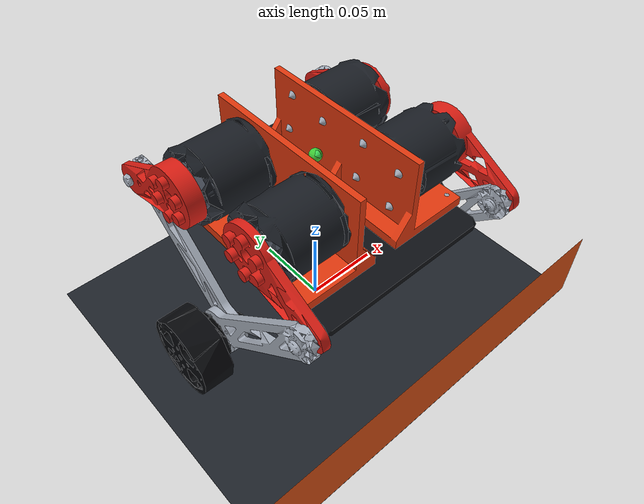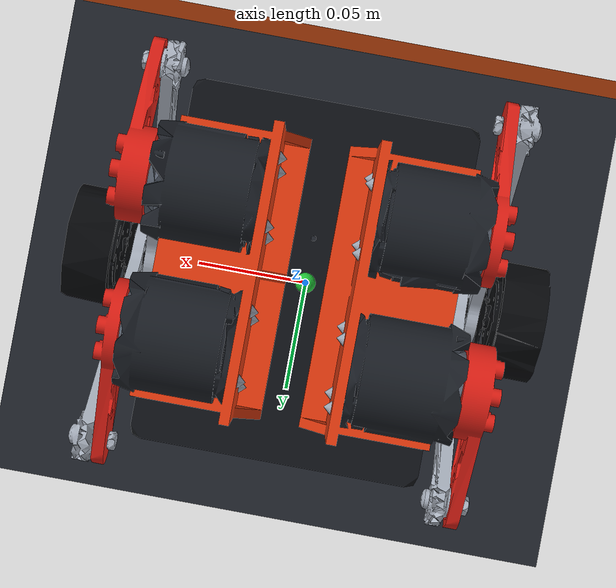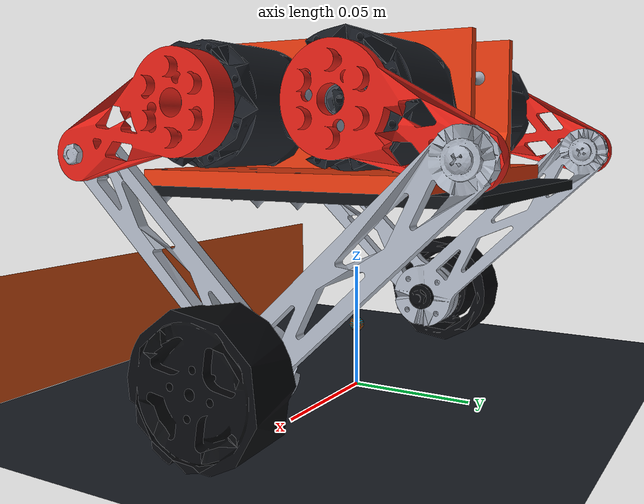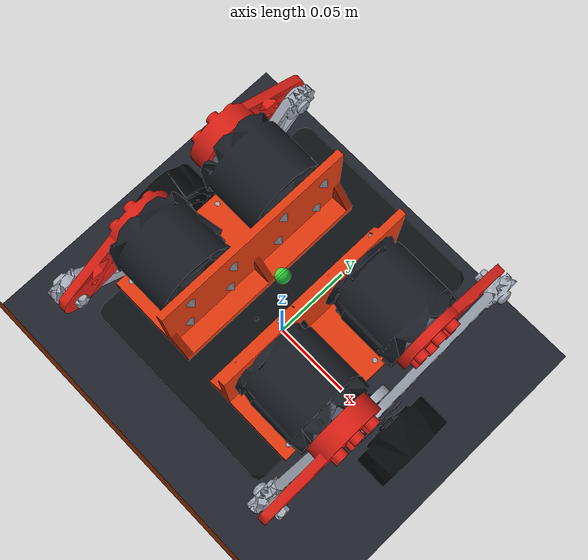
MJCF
<mujoco model="EduLite wheel-legged robot dynamic 2.3 kg">
  <compiler angle="radian" autolimits="true" balanceinertia="true"/>
  <option timestep="0.001" integrator="implicitfast" cone="elliptic"
          gravity="0 0 -9.80665" impratio="10"/>
  <size njmax="2000" nconmax="500"/>
  <visual>
    <global azimuth="135" elevation="-18" offwidth="960" offheight="720"/>
    <headlight ambient="0.35 0.35 0.35" diffuse="0.75 0.75 0.75"
               specular="0.25 0.25 0.25"/>
    <quality shadowsize="4096" offsamples="4"/>
  </visual>
  <default>
    <default class="visual">
      <geom type="mesh" contype="0" conaffinity="0" group="1" density="0"/>
    </default>
  </default>
  <asset>
    <mesh name="baseplate" file="assets/baseplate.obj"/>
    <mesh name="edulite_left_negative_rotor" file="assets/edulite_left_negative_rotor.obj"/>
    <mesh name="edulite_left_negative_stator" file="assets/edulite_left_negative_stator.obj"/>
    <mesh name="edulite_left_positive_rotor" file="assets/edulite_left_positive_rotor.obj"/>
    <mesh name="edulite_left_positive_stator" file="assets/edulite_left_positive_stator.obj"/>
    <mesh name="edulite_right_negative_rotor" file="assets/edulite_right_negative_rotor.obj"/>
    <mesh name="edulite_right_negative_stator" file="assets/edulite_right_negative_stator.obj"/>
    <mesh name="edulite_right_positive_rotor" file="assets/edulite_right_positive_rotor.obj"/>
    <mesh name="edulite_right_positive_stator" file="assets/edulite_right_positive_stator.obj"/>
    <mesh name="fixed_fasteners" file="assets/fixed_fasteners.obj"/>
    <mesh name="left_bracket" file="assets/left_bracket.obj"/>
    <mesh name="left_distal_negative" file="assets/left_distal_negative.obj"/>
    <mesh name="left_distal_positive" file="assets/left_distal_positive.obj"/>
    <mesh name="left_proximal_negative" file="assets/left_proximal_negative.obj"/>
    <mesh name="left_proximal_positive" file="assets/left_proximal_positive.obj"/>
    <mesh name="left_wheel" file="assets/left_wheel.obj"/>
    <mesh name="right_bracket" file="assets/right_bracket.obj"/>
    <mesh name="right_distal_negative" file="assets/right_distal_negative.obj"/>
    <mesh name="right_distal_positive" file="assets/right_distal_positive.obj"/>
    <mesh name="right_proximal_negative" file="assets/right_proximal_negative.obj"/>
    <mesh name="right_proximal_positive" file="assets/right_proximal_positive.obj"/>
    <mesh name="right_wheel" file="assets/right_wheel.obj"/>
    <material name="carbon" rgba="0.055 0.065 0.08 1" metallic="0.45" roughness="0.38"/>
    <material name="bracket" rgba="0.88 0.22 0.055 1" metallic="0.35" roughness="0.3"/>
    <material name="motor" rgba="0.10 0.115 0.14 1" metallic="0.7" roughness="0.24"/>
    <material name="rotor" rgba="0.33 0.36 0.41 1" metallic="0.8" roughness="0.2"/>
    <material name="active_link" rgba="0.86 0.12 0.08 1"
              metallic="0.65" roughness="0.25"/>
    <material name="passive_link" rgba="0.66 0.69 0.74 1"
              metallic="0.8" roughness="0.22"/>
    <material name="steel" rgba="0.62 0.65 0.70 1" metallic="0.9" roughness="0.16"/>
    <material name="tire" rgba="0.025 0.03 0.04 1" metallic="0.05" roughness="0.78"/>
    <texture name="ground_tex" type="2d" builtin="checker" rgb1="0.16 0.18 0.22"
             rgb2="0.08 0.09 0.11" width="512" height="512"/>
    <material name="ground" texture="ground_tex" texrepeat="4 4"
              reflectance="0.08" roughness="0.8"/>
    <material name="step_mat" rgba="0.82 0.30 0.07 1" metallic="0.1" roughness="0.75"/>
  </asset>
  <worldbody>
    <light pos="0 -0.5 1.2" dir="0 0.4 -1" diffuse="0.9 0.88 0.84" castshadow="true"/>
    <light pos="-0.7 0.4 0.6" dir="0.7 -0.2 -0.5" diffuse="0.35 0.42 0.55"/>
    <geom name="ground" type="plane" size="2 2 0.05" material="ground"
          contype="1" conaffinity="1" condim="4" friction="1.0 0.02 0.001"/>
    <geom name="step" type="box" pos="0 -0.38 0.025"
          size="0.40 0.25 0.025"
          material="step_mat" contype="1" conaffinity="1" condim="4"
          rgba="0.82 0.30 0.07 1"
          friction="1.0 0.02 0.001"/>
    <body name="chassis" pos="0 0 0.0817">
      <freejoint name="chassis_free"/>
      <inertial pos="0 0 0.025"
                mass="1.586"
                diaginertia="0.0037171875 0.004126904167 0.006357216667"/>
      <geom class="visual" mesh="baseplate" material="carbon"/>
      <geom class="visual" mesh="left_bracket" material="bracket"/>
      <geom class="visual" mesh="right_bracket" material="bracket"/>
      <geom class="visual" mesh="fixed_fasteners" material="steel"/>
      <geom class="visual" mesh="edulite_left_negative_stator" material="motor"/>
      <geom class="visual" mesh="edulite_left_positive_stator" material="motor"/>
      <geom class="visual" mesh="edulite_right_negative_stator" material="motor"/>
      <geom class="visual" mesh="edulite_right_positive_stator" material="motor"/>
      <geom name="chassis_collision" type="box" pos="0 0 0.025"
            size="0.08 0.075 0.0375" density="0"
            contype="2" conaffinity="1" group="3" rgba="0.1 0.65 1 0.12"/>
      <site name="imu" pos="0 0 0.04" size="0.004" rgba="0.2 1 0.3 0.8"/>

      <body name="left_proximal_negative" pos="0 -0.03 0.034"
            quat="0.1848511965 -0.9827665212 0 0">
        <inertial pos="-0.07 0.025 0" mass="0.05"
                  diaginertia="1.176666667e-05 1.95e-06 1.101666667e-05"/>
        <joint name="left_hip_negative" type="hinge" axis="1 0 0"
               range="-0.8 0.8" damping="0.08" armature="0.00008"/>
        <geom class="visual" mesh="left_proximal_negative" material="active_link"/>
        <geom class="visual" mesh="edulite_left_negative_rotor" material="rotor"/>
        <geom name="left_proximal_negative_collision" type="capsule"
              fromto="-0.07 0 0 -0.07 0.05 0" size="0.009"
              density="0" contype="2" conaffinity="1" group="3"
              rgba="0.1 0.65 1 0.15"/>
        <body name="left_distal_negative" pos="0 0.05 6.938893904e-18"
              quat="0.5334077329 0.8458582567 0 0">
          <inertial pos="-0.07 0.0525 0" mass="0.04"
                    diaginertia="3.740333333e-05 1.133333333e-06 3.723e-05"/>
          <joint name="left_knee_negative" type="hinge" axis="1 0 0"
                 range="-0.8 0.8" damping="0.03"/>
          <geom class="visual" mesh="left_distal_negative" material="passive_link"/>
          <geom name="left_distal_negative_collision" type="capsule"
                fromto="-0.07 0 0 -0.07 0.105 0" size="0.007"
                density="0" contype="2" conaffinity="1" group="3"
                rgba="0.1 0.65 1 0.15"/>
          <body name="left_wheel" pos="0 0.105 0"
                quat="0.929882234 0.3678573513 0 0">
            <inertial pos="-0.083 0 0" mass="0.177"
                      diaginertia="5.8453365e-05 6.04376825e-05 6.04376825e-05"/>
            <joint name="left_wheel_spin" type="hinge" axis="1 0 0"
                   damping="0.002" armature="0.00004"/>
            <geom class="visual" mesh="left_wheel" material="tire"/>
            <geom name="left_wheel_collision" type="cylinder"
                  pos="-0.083 0 0" size="0.0257 0.023"
                  quat="0.70710678 0 0.70710678 0" contype="2" conaffinity="1"
                  condim="4" friction="1.0 0.02 0.001" group="3"
                  rgba="0.1 0.65 1 0.18"/>
            <site name="left_wheel_center" size="0.003" rgba="0.1 0.8 1 0.8"/>
          </body>
        </body>
      </body>
      <body name="left_proximal_positive" pos="0 0.03 0.034"
            quat="0.9827665212 -0.1848511965 0 0">
        <inertial pos="-0.07 0.025 0" mass="0.05"
                  diaginertia="1.176666667e-05 1.95e-06 1.101666667e-05"/>
        <joint name="left_hip_positive" type="hinge" axis="1 0 0"
               range="-0.8 0.8" damping="0.08" armature="0.00008"/>
        <geom class="visual" mesh="left_proximal_positive" material="active_link"/>
        <geom class="visual" mesh="edulite_left_positive_rotor" material="rotor"/>
        <geom name="left_proximal_positive_collision" type="capsule"
              fromto="-0.07 0 0 -0.07 0.05 0" size="0.009"
              density="0" contype="2" conaffinity="1" group="3"
              rgba="0.1 0.65 1 0.15"/>
        <body name="left_distal_positive" pos="0 0.05 -3.469446952e-18"
              quat="0.5334077329 -0.8458582567 0 0">
          <inertial pos="-0.07 0.0525 0" mass="0.04"
                    diaginertia="3.740333333e-05 1.133333333e-06 3.723e-05"/>
          <joint name="left_knee_positive" type="hinge" axis="1 0 0"
                 range="-0.8 0.8" damping="0.03"/>
          <geom class="visual" mesh="left_distal_positive" material="passive_link"/>
          <geom name="left_distal_positive_collision" type="capsule"
                fromto="-0.07 0 0 -0.07 0.105 0" size="0.007"
                density="0" contype="2" conaffinity="1" group="3"
                rgba="0.1 0.65 1 0.15"/>
          <site name="left_closure" pos="0 0.105 0" size="0.003"
                rgba="1 0.45 0.1 0.8"/>
        </body>
      </body>

      <body name="right_proximal_negative" pos="0 -0.03 0.034"
            quat="0.1848511965 -0.9827665212 0 0">
        <inertial pos="0.07 0.025 0" mass="0.05"
                  diaginertia="1.176666667e-05 1.95e-06 1.101666667e-05"/>
        <joint name="right_hip_negative" type="hinge" axis="1 0 0"
               range="-0.8 0.8" damping="0.08" armature="0.00008"/>
        <geom class="visual" mesh="right_proximal_negative" material="active_link"/>
        <geom class="visual" mesh="edulite_right_negative_rotor" material="rotor"/>
        <geom name="right_proximal_negative_collision" type="capsule"
              fromto="0.07 0 0 0.07 0.05 0" size="0.009"
              density="0" contype="2" conaffinity="1" group="3"
              rgba="0.1 0.65 1 0.15"/>
        <body name="right_distal_negative" pos="0 0.05 6.938893904e-18"
              quat="0.5334077329 0.8458582567 0 0">
          <inertial pos="0.07 0.0525 0" mass="0.04"
                    diaginertia="3.740333333e-05 1.133333333e-06 3.723e-05"/>
          <joint name="right_knee_negative" type="hinge" axis="1 0 0"
                 range="-0.8 0.8" damping="0.03"/>
          <geom class="visual" mesh="right_distal_negative" material="passive_link"/>
          <geom name="right_distal_negative_collision" type="capsule"
                fromto="0.07 0 0 0.07 0.105 0" size="0.007"
                density="0" contype="2" conaffinity="1" group="3"
                rgba="0.1 0.65 1 0.15"/>
          <body name="right_wheel" pos="0 0.105 0"
                quat="0.929882234 0.3678573513 0 0">
            <inertial pos="0.083 0 0" mass="0.177"
                      diaginertia="5.8453365e-05 6.04376825e-05 6.04376825e-05"/>
            <joint name="right_wheel_spin" type="hinge" axis="1 0 0"
                   damping="0.002" armature="0.00004"/>
            <geom class="visual" mesh="right_wheel" material="tire"/>
            <geom name="right_wheel_collision" type="cylinder"
                  pos="0.083 0 0" size="0.0257 0.023"
                  quat="0.70710678 0 0.70710678 0" contype="2" conaffinity="1"
                  condim="4" friction="1.0 0.02 0.001" group="3"
                  rgba="0.1 0.65 1 0.18"/>
            <site name="right_wheel_center" size="0.003" rgba="0.1 0.8 1 0.8"/>
          </body>
        </body>
      </body>
      <body name="right_proximal_positive" pos="0 0.03 0.034"
            quat="0.9827665212 -0.1848511965 0 0">
        <inertial pos="0.07 0.025 0" mass="0.05"
                  diaginertia="1.176666667e-05 1.95e-06 1.101666667e-05"/>
        <joint name="right_hip_positive" type="hinge" axis="1 0 0"
               range="-0.8 0.8" damping="0.08" armature="0.00008"/>
        <geom class="visual" mesh="right_proximal_positive" material="active_link"/>
        <geom class="visual" mesh="edulite_right_positive_rotor" material="rotor"/>
        <geom name="right_proximal_positive_collision" type="capsule"
              fromto="0.07 0 0 0.07 0.05 0" size="0.009"
              density="0" contype="2" conaffinity="1" group="3"
              rgba="0.1 0.65 1 0.15"/>
        <body name="right_distal_positive" pos="0 0.05 -3.469446952e-18"
              quat="0.5334077329 -0.8458582567 0 0">
          <inertial pos="0.07 0.0525 0" mass="0.04"
                    diaginertia="3.740333333e-05 1.133333333e-06 3.723e-05"/>
          <joint name="right_knee_positive" type="hinge" axis="1 0 0"
                 range="-0.8 0.8" damping="0.03"/>
          <geom class="visual" mesh="right_distal_positive" material="passive_link"/>
          <geom name="right_distal_positive_collision" type="capsule"
                fromto="0.07 0 0 0.07 0.105 0" size="0.007"
                density="0" contype="2" conaffinity="1" group="3"
                rgba="0.1 0.65 1 0.15"/>
          <site name="right_closure" pos="0 0.105 0" size="0.003"
                rgba="1 0.45 0.1 0.8"/>
        </body>
      </body>
    </body>
    <camera name="overview" mode="trackcom" target="chassis" pos="0.33 -0.42 0.26"
            xyaxes="0.79 0.61 0 -0.22 0.29 0.93"/>
    <camera name="side" mode="trackcom" target="chassis" pos="0 -0.48 0.17"
            xyaxes="1 0 0 0 0.22 0.98"/>
  </worldbody>
  <equality>
    <connect name="left_fivebar_closure" site1="left_closure"
             site2="left_wheel_center" solref="0.003 1"
             solimp="0.97 0.995 0.0005"/>
    <connect name="right_fivebar_closure" site1="right_closure"
             site2="right_wheel_center" solref="0.003 1"
             solimp="0.97 0.995 0.0005"/>
  </equality>
  <actuator>
    <motor name="left_hip_negative_motor" joint="left_hip_negative"
           ctrlrange="-6 6" forcerange="-6 6"/>
    <motor name="left_hip_positive_motor" joint="left_hip_positive"
           ctrlrange="-6 6" forcerange="-6 6"/>
    <motor name="right_hip_negative_motor" joint="right_hip_negative"
           ctrlrange="-6 6" forcerange="-6 6"/>
    <motor name="right_hip_positive_motor" joint="right_hip_positive"
           ctrlrange="-6 6" forcerange="-6 6"/>
    <motor name="left_wheel_motor" joint="left_wheel_spin"
           ctrlrange="-0.3 0.3" forcerange="-0.3 0.3"/>
    <motor name="right_wheel_motor" joint="right_wheel_spin"
           ctrlrange="-0.3 0.3" forcerange="-0.3 0.3"/>
  </actuator>
</mujoco>
